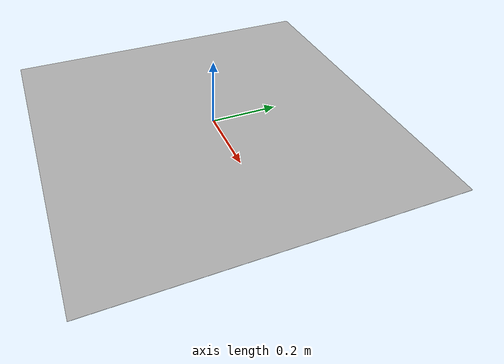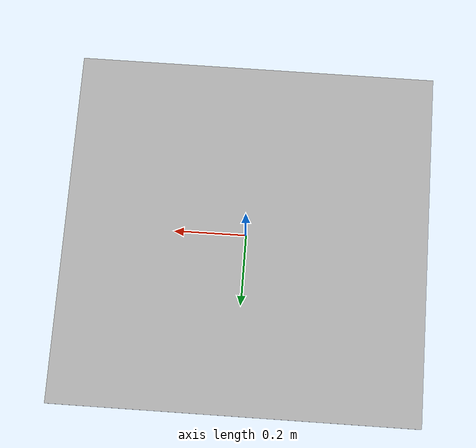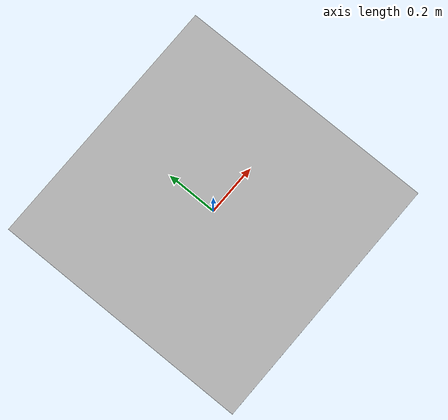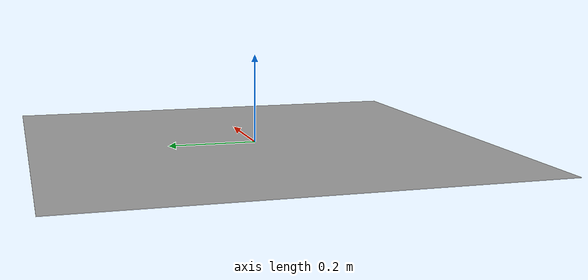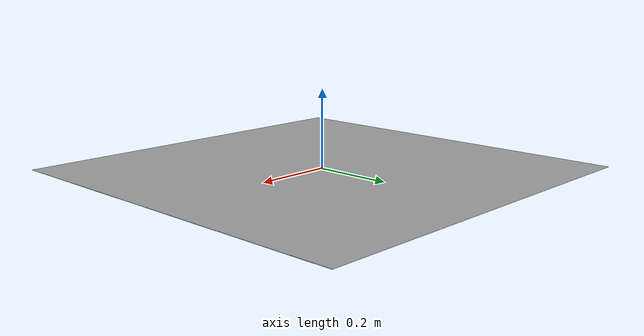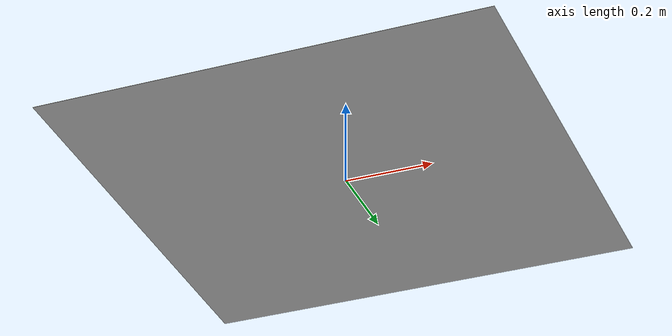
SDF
<?xml version='1.0'?>
<sdf version='1.4'>
	<model name="collection_disk">
		<static>true</static>
		<link name="link">
		  <visual name='visual'>
		    <geometry>
		      <box>
			<size>1.016 1.016 0.001</size>
		      </box>
		    </geometry>
	 	    <material>
		      <script>
			<uri>model://collection_disk/materials/scripts</uri>
			<uri>model://collection_disk/materials/textures</uri>
			<name>collection_disk/Diffuse</name>
		      </script>
		    </material>
		  </visual>

<sensor type="camera" name="prelim_camera">
				<pose>0 0 13 0.0 1.57079 0.0</pose>
				<visualize>false</visualize>
				<update_rate>6.0</update_rate>
				<camera name="prelim_camera">
					<image>
						<width>800</width>
						<height>800</height>
						<format>B8G8R8</format>
					</image>
				</camera>
				<plugin name="camera_controller" filename="libgazebo_ros_camera.so">
					<cameraName>/collection_disk/prelim_camera</cameraName>
					<imageTopicName>/collection_disk/prelim_camera/image</imageTopicName>
					<cameraInfoTopicName>/collection_disk/prelim_camera/camera_info</cameraInfoTopicName>
				</plugin>
			</sensor>

			<sensor type="camera" name="final_camera">
				<pose>0 0 20.1 0.0 1.57079 0.0</pose>
				<visualize>false</visualize>
				<update_rate>6.0</update_rate>
				<camera name="final_camera">
					<image>
						<width>1200</width>
						<height>1200</height>
						<format>B8G8R8</format>
					</image>
				</camera>
				<plugin name="camera_controller" filename="libgazebo_ros_camera.so">
					<cameraName>/collection_disk/final_camera</cameraName>
					<imageTopicName>/collection_disk/final_camera/image</imageTopicName>
					<cameraInfoTopicName>/collection_disk/final_camera/camera_info</cameraInfoTopicName>
				</plugin>
			</sensor>

		</link>
		<!-- Score Plugin -->
		<plugin name="score_sim" filename="libgazebo_plugins_score.so">
			<!-- required: publishing topic for the collection score -->
			<scoreTopic>/collectionZone/score</scoreTopic>
			<!-- optional: the size of the square collection zone used for scoring (default = 1.016 m sides) -->
			<collectionZoneSquareSize>1.016</collectionZoneSquareSize>
			<!-- optional: updates per second (default = 0.2, i.e. 1 update very 5 seconds) -->
			<updateRate>0.2</updateRate>
		</plugin>
	</model>
</sdf>
